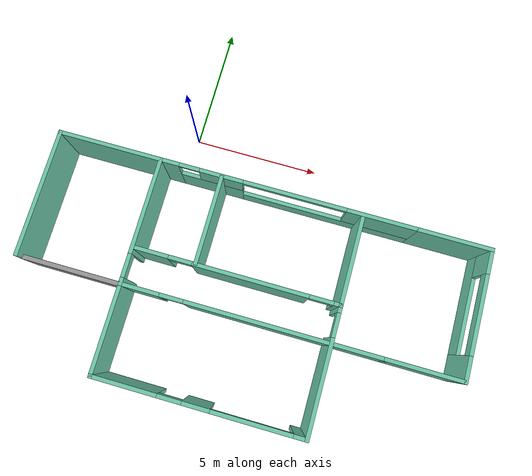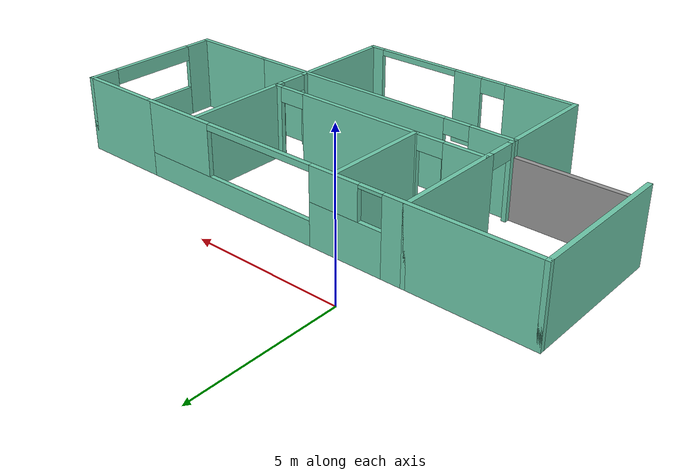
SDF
<?xml version='1.0'?>
<sdf version='1.6'>
  <model name='mybuilding'>
    <pose frame=''>3.59 -5.88011 0 0 -0 0</pose>
    <link name='Door_2'>
      <collision name='Door_2_Collision'>
        <geometry>
          <box>
            <size>4 0.17 2</size>
          </box>
        </geometry>
        <pose frame=''>0 0 1 0 -0 0</pose>
      </collision>
      <visual name='Door_2_Visual'>
        <pose frame=''>0 0 1 0 -0 0</pose>
        <geometry>
          <box>
            <size>4 0.17 2</size>
          </box>
        </geometry>
        <material>
          <script>
            <uri>file://media/materials/scripts/gazebo.material</uri>
            <name>Gazebo/Grey</name>
          </script>
        </material>
      </visual>
      <pose frame=''>-6.34759 -0.757622 0 0 -0 0</pose>
    </link>
    <link name='Wall_0'>
      <collision name='Wall_0_Collision'>
        <geometry>
          <box>
            <size>5 0.15 2.5</size>
          </box>
        </geometry>
        <pose frame=''>0 0 1.25 0 -0 0</pose>
      </collision>
      <visual name='Wall_0_Visual'>
        <pose frame=''>0 0 1.25 0 -0 0</pose>
        <geometry>
          <box>
            <size>5 0.15 2.5</size>
          </box>
        </geometry>
        <material>
          <script>
            <uri>file://media/materials/scripts/gazebo.material</uri>
            <name>Gazebo/Grey</name>
          </script>
          <ambient>0.435294 0.796078 0.67451 1</ambient>
        </material>
        <meta>
          <layer>0</layer>
        </meta>
      </visual>
      <pose frame=''>-8.35 1.67511 0 0 0 -1.5708</pose>
    </link>
    <link name='Wall_10'>
      <pose frame=''>-0.425 -4.09989 0 0 -0 0</pose>
      <visual name='Wall_10_Visual_0'>
        <pose frame=''>-2.74578 0 1.25 0 -0 0</pose>
        <geometry>
          <box>
            <size>2.50844 0.15 2.5</size>
          </box>
        </geometry>
        <material>
          <script>
            <uri>file://media/materials/scripts/gazebo.material</uri>
            <name>Gazebo/Grey</name>
          </script>
          <ambient>0.435294 0.796078 0.67451 1</ambient>
        </material>
        <meta>
          <layer>0</layer>
        </meta>
      </visual>
      <collision name='Wall_10_Collision_0'>
        <geometry>
          <box>
            <size>2.50844 0.15 2.5</size>
          </box>
        </geometry>
        <pose frame=''>-2.74578 0 1.25 0 -0 0</pose>
      </collision>
      <visual name='Wall_10_Visual_1'>
        <pose frame=''>-0.076945 0 1.25 0 -0 0</pose>
        <geometry>
          <box>
            <size>1.02922 0.15 2.5</size>
          </box>
        </geometry>
        <material>
          <script>
            <uri>file://media/materials/scripts/gazebo.material</uri>
            <name>Gazebo/Grey</name>
          </script>
          <ambient>0.435294 0.796078 0.67451 1</ambient>
        </material>
        <meta>
          <layer>0</layer>
        </meta>
      </visual>
      <collision name='Wall_10_Collision_1'>
        <geometry>
          <box>
            <size>1.02922 0.15 2.5</size>
          </box>
        </geometry>
        <pose frame=''>-0.076945 0 1.25 0 -0 0</pose>
      </collision>
      <visual name='Wall_10_Visual_2'>
        <pose frame=''>3.71883 0 1.25 0 -0 0</pose>
        <geometry>
          <box>
            <size>0.562334 0.15 2.5</size>
          </box>
        </geometry>
        <material>
          <script>
            <uri>file://media/materials/scripts/gazebo.material</uri>
            <name>Gazebo/Grey</name>
          </script>
          <ambient>0.435294 0.796078 0.67451 1</ambient>
        </material>
        <meta>
          <layer>0</layer>
        </meta>
      </visual>
      <collision name='Wall_10_Collision_2'>
        <geometry>
          <box>
            <size>0.562334 0.15 2.5</size>
          </box>
        </geometry>
        <pose frame=''>3.71883 0 1.25 0 -0 0</pose>
      </collision>
      <visual name='Wall_10_Visual_3'>
        <pose frame=''>-1.04156 0 2.25 0 -0 0</pose>
        <geometry>
          <box>
            <size>0.9 0.15 0.5</size>
          </box>
        </geometry>
        <material>
          <script>
            <uri>file://media/materials/scripts/gazebo.material</uri>
            <name>Gazebo/Grey</name>
          </script>
          <ambient>0.435294 0.796078 0.67451 1</ambient>
        </material>
        <meta>
          <layer>0</layer>
        </meta>
      </visual>
      <collision name='Wall_10_Collision_3'>
        <geometry>
          <box>
            <size>0.9 0.15 0.5</size>
          </box>
        </geometry>
        <pose frame=''>-1.04156 0 2.25 0 -0 0</pose>
      </collision>
      <visual name='Wall_10_Visual_4'>
        <pose frame=''>1.93767 0 2.4 0 -0 0</pose>
        <geometry>
          <box>
            <size>3 0.15 0.2</size>
          </box>
        </geometry>
        <material>
          <script>
            <uri>file://media/materials/scripts/gazebo.material</uri>
            <name>Gazebo/Grey</name>
          </script>
          <ambient>0.435294 0.796078 0.67451 1</ambient>
        </material>
        <meta>
          <layer>0</layer>
        </meta>
      </visual>
      <collision name='Wall_10_Collision_4'>
        <geometry>
          <box>
            <size>3 0.15 0.2</size>
          </box>
        </geometry>
        <pose frame=''>1.93767 0 2.4 0 -0 0</pose>
      </collision>
    </link>
    <link name='Wall_14'>
      <pose frame=''>-0.411 0.65011 0 0 -0 0</pose>
      <visual name='Wall_14_Visual_0'>
        <pose frame=''>-3.28166 0 1.25 0 -0 0</pose>
        <geometry>
          <box>
            <size>1.43667 0.15 2.5</size>
          </box>
        </geometry>
        <material>
          <script>
            <uri>file://media/materials/scripts/gazebo.material</uri>
            <name>Gazebo/Grey</name>
          </script>
          <ambient>0.435294 0.796078 0.67451 1</ambient>
        </material>
        <meta>
          <layer>0</layer>
        </meta>
      </visual>
      <collision name='Wall_14_Collision_0'>
        <geometry>
          <box>
            <size>1.43667 0.15 2.5</size>
          </box>
        </geometry>
        <pose frame=''>-3.28166 0 1.25 0 -0 0</pose>
      </collision>
      <visual name='Wall_14_Visual_1'>
        <pose frame=''>0.543845 0 1.25 0 -0 0</pose>
        <geometry>
          <box>
            <size>4.41435 0.15 2.5</size>
          </box>
        </geometry>
        <material>
          <script>
            <uri>file://media/materials/scripts/gazebo.material</uri>
            <name>Gazebo/Grey</name>
          </script>
          <ambient>0.435294 0.796078 0.67451 1</ambient>
        </material>
        <meta>
          <layer>0</layer>
        </meta>
      </visual>
      <collision name='Wall_14_Collision_1'>
        <geometry>
          <box>
            <size>4.41435 0.15 2.5</size>
          </box>
        </geometry>
        <pose frame=''>0.543845 0 1.25 0 -0 0</pose>
      </collision>
      <visual name='Wall_14_Visual_2'>
        <pose frame=''>3.8342 0 1.25 0 -0 0</pose>
        <geometry>
          <box>
            <size>0.33159 0.15 2.5</size>
          </box>
        </geometry>
        <material>
          <script>
            <uri>file://media/materials/scripts/gazebo.material</uri>
            <name>Gazebo/Grey</name>
          </script>
          <ambient>0.435294 0.796078 0.67451 1</ambient>
        </material>
        <meta>
          <layer>0</layer>
        </meta>
      </visual>
      <collision name='Wall_14_Collision_2'>
        <geometry>
          <box>
            <size>0.33159 0.15 2.5</size>
          </box>
        </geometry>
        <pose frame=''>3.8342 0 1.25 0 -0 0</pose>
      </collision>
      <visual name='Wall_14_Visual_3'>
        <pose frame=''>-2.11333 0 2.25 0 -0 0</pose>
        <geometry>
          <box>
            <size>0.9 0.15 0.5</size>
          </box>
        </geometry>
        <material>
          <script>
            <uri>file://media/materials/scripts/gazebo.material</uri>
            <name>Gazebo/Grey</name>
          </script>
          <ambient>0.435294 0.796078 0.67451 1</ambient>
        </material>
        <meta>
          <layer>0</layer>
        </meta>
      </visual>
      <collision name='Wall_14_Collision_3'>
        <geometry>
          <box>
            <size>0.9 0.15 0.5</size>
          </box>
        </geometry>
        <pose frame=''>-2.11333 0 2.25 0 -0 0</pose>
      </collision>
      <visual name='Wall_14_Visual_4'>
        <pose frame=''>3.20971 0 2.25 0 -0 0</pose>
        <geometry>
          <box>
            <size>0.917391 0.15 0.5</size>
          </box>
        </geometry>
        <material>
          <script>
            <uri>file://media/materials/scripts/gazebo.material</uri>
            <name>Gazebo/Grey</name>
          </script>
          <ambient>0.435294 0.796078 0.67451 1</ambient>
        </material>
        <meta>
          <layer>0</layer>
        </meta>
      </visual>
      <collision name='Wall_14_Collision_4'>
        <geometry>
          <box>
            <size>0.917391 0.15 0.5</size>
          </box>
        </geometry>
        <pose frame=''>3.20971 0 2.25 0 -0 0</pose>
      </collision>
    </link>
    <link name='Wall_17'>
      <pose frame=''>3.507 -1.72489 0 0 0 -1.57374</pose>
      <visual name='Wall_17_Visual_0'>
        <pose frame=''>-2.27636 0 1.25 0 -0 0</pose>
        <geometry>
          <box>
            <size>0.347298 0.15 2.5</size>
          </box>
        </geometry>
        <material>
          <script>
            <uri>file://media/materials/scripts/gazebo.material</uri>
            <name>Gazebo/Grey</name>
          </script>
          <ambient>0.435294 0.796078 0.67451 1</ambient>
        </material>
        <meta>
          <layer>0</layer>
        </meta>
      </visual>
      <collision name='Wall_17_Collision_0'>
        <geometry>
          <box>
            <size>0.347298 0.15 2.5</size>
          </box>
        </geometry>
        <pose frame=''>-2.27636 0 1.25 0 -0 0</pose>
      </collision>
      <visual name='Wall_17_Visual_1'>
        <pose frame=''>0.623649 0 1.25 0 -0 0</pose>
        <geometry>
          <box>
            <size>3.65272 0.15 2.5</size>
          </box>
        </geometry>
        <material>
          <script>
            <uri>file://media/materials/scripts/gazebo.material</uri>
            <name>Gazebo/Grey</name>
          </script>
          <ambient>0.435294 0.796078 0.67451 1</ambient>
        </material>
        <meta>
          <layer>0</layer>
        </meta>
      </visual>
      <collision name='Wall_17_Collision_1'>
        <geometry>
          <box>
            <size>3.65272 0.15 2.5</size>
          </box>
        </geometry>
        <pose frame=''>0.623649 0 1.25 0 -0 0</pose>
      </collision>
      <visual name='Wall_17_Visual_2'>
        <pose frame=''>-1.65271 0 2.25 0 -0 0</pose>
        <geometry>
          <box>
            <size>0.9 0.15 0.5</size>
          </box>
        </geometry>
        <material>
          <script>
            <uri>file://media/materials/scripts/gazebo.material</uri>
            <name>Gazebo/Grey</name>
          </script>
          <ambient>0.435294 0.796078 0.67451 1</ambient>
        </material>
        <meta>
          <layer>0</layer>
        </meta>
      </visual>
      <collision name='Wall_17_Collision_2'>
        <geometry>
          <box>
            <size>0.9 0.15 0.5</size>
          </box>
        </geometry>
        <pose frame=''>-1.65271 0 2.25 0 -0 0</pose>
      </collision>
    </link>
    <link name='Wall_19'>
      <collision name='Wall_19_Collision'>
        <geometry>
          <box>
            <size>3 0.15 2.5</size>
          </box>
        </geometry>
        <pose frame=''>0 0 1.25 0 -0 0</pose>
      </collision>
      <visual name='Wall_19_Visual'>
        <pose frame=''>0 0 1.25 0 -0 0</pose>
        <geometry>
          <box>
            <size>3 0.15 2.5</size>
          </box>
        </geometry>
        <material>
          <script>
            <uri>file://media/materials/scripts/gazebo.material</uri>
            <name>Gazebo/Grey</name>
          </script>
          <ambient>0.435294 0.796078 0.67451 1</ambient>
        </material>
        <meta>
          <layer>0</layer>
        </meta>
      </visual>
      <pose frame=''>6.925 -0.74989 0 0 -0 0</pose>
    </link>
    <link name='Wall_20'>
      <pose frame=''>8.35 1.67511 0 0 -0 1.5708</pose>
      <visual name='Wall_20_Visual_0'>
        <pose frame=''>-2.00018 0 1.25 0 -0 0</pose>
        <geometry>
          <box>
            <size>0.999645 0.15 2.5</size>
          </box>
        </geometry>
        <material>
          <script>
            <uri>file://media/materials/scripts/gazebo.material</uri>
            <name>Gazebo/Grey</name>
          </script>
          <ambient>0.435294 0.796078 0.67451 1</ambient>
        </material>
        <meta>
          <layer>0</layer>
        </meta>
      </visual>
      <collision name='Wall_20_Collision_0'>
        <geometry>
          <box>
            <size>0.999645 0.15 2.5</size>
          </box>
        </geometry>
        <pose frame=''>-2.00018 0 1.25 0 -0 0</pose>
      </collision>
      <visual name='Wall_20_Visual_1'>
        <pose frame=''>0.499822 0 0.5 0 -0 0</pose>
        <geometry>
          <box>
            <size>4.00035 0.15 1</size>
          </box>
        </geometry>
        <material>
          <script>
            <uri>file://media/materials/scripts/gazebo.material</uri>
            <name>Gazebo/Grey</name>
          </script>
          <ambient>0.435294 0.796078 0.67451 1</ambient>
        </material>
        <meta>
          <layer>0</layer>
        </meta>
      </visual>
      <collision name='Wall_20_Collision_1'>
        <geometry>
          <box>
            <size>4.00035 0.15 1</size>
          </box>
        </geometry>
        <pose frame=''>0.499822 0 0.5 0 -0 0</pose>
      </collision>
      <visual name='Wall_20_Visual_2'>
        <pose frame=''>1.99982 0 1.75 0 -0 0</pose>
        <geometry>
          <box>
            <size>1.00036 0.15 1.5</size>
          </box>
        </geometry>
        <material>
          <script>
            <uri>file://media/materials/scripts/gazebo.material</uri>
            <name>Gazebo/Grey</name>
          </script>
          <ambient>0.435294 0.796078 0.67451 1</ambient>
        </material>
        <meta>
          <layer>0</layer>
        </meta>
      </visual>
      <collision name='Wall_20_Collision_2'>
        <geometry>
          <box>
            <size>1.00036 0.15 1.5</size>
          </box>
        </geometry>
        <pose frame=''>1.99982 0 1.75 0 -0 0</pose>
      </collision>
      <visual name='Wall_20_Visual_3'>
        <pose frame=''>-0.000355 0 2.25 0 -0 0</pose>
        <geometry>
          <box>
            <size>3 0.15 0.5</size>
          </box>
        </geometry>
        <material>
          <script>
            <uri>file://media/materials/scripts/gazebo.material</uri>
            <name>Gazebo/Grey</name>
          </script>
          <ambient>0.435294 0.796078 0.67451 1</ambient>
        </material>
        <meta>
          <layer>0</layer>
        </meta>
      </visual>
      <collision name='Wall_20_Collision_3'>
        <geometry>
          <box>
            <size>3 0.15 0.5</size>
          </box>
        </geometry>
        <pose frame=''>-0.000355 0 2.25 0 -0 0</pose>
      </collision>
    </link>
    <link name='Wall_21'>
      <collision name='Wall_21_Collision'>
        <geometry>
          <box>
            <size>3 0.15 2.5</size>
          </box>
        </geometry>
        <pose frame=''>0 0 1.25 0 -0 0</pose>
      </collision>
      <visual name='Wall_21_Visual'>
        <pose frame=''>0 0 1.25 0 -0 0</pose>
        <geometry>
          <box>
            <size>3 0.15 2.5</size>
          </box>
        </geometry>
        <material>
          <script>
            <uri>file://media/materials/scripts/gazebo.material</uri>
            <name>Gazebo/Grey</name>
          </script>
          <ambient>0.435294 0.796078 0.67451 1</ambient>
        </material>
        <meta>
          <layer>0</layer>
        </meta>
      </visual>
      <pose frame=''>6.925 4.10011 0 0 -0 3.14159</pose>
    </link>
    <link name='Wall_23'>
      <collision name='Wall_23_Collision'>
        <geometry>
          <box>
            <size>3.5 0.15 2.5</size>
          </box>
        </geometry>
        <pose frame=''>0 0 1.25 0 -0 0</pose>
      </collision>
      <visual name='Wall_23_Visual'>
        <pose frame=''>0 0 1.25 0 -0 0</pose>
        <geometry>
          <box>
            <size>3.5 0.15 2.5</size>
          </box>
        </geometry>
        <material>
          <script>
            <uri>file://media/materials/scripts/gazebo.material</uri>
            <name>Gazebo/Grey</name>
          </script>
          <ambient>0.435294 0.796078 0.67451 1</ambient>
        </material>
        <meta>
          <layer>0</layer>
        </meta>
      </visual>
      <pose frame=''>3.514 2.32511 0 0 -0 1.5708</pose>
    </link>
    <link name='Wall_27'>
      <collision name='Wall_27_Collision'>
        <geometry>
          <box>
            <size>3.5 0.15 2.5</size>
          </box>
        </geometry>
        <pose frame=''>0 0 1.25 0 -0 0</pose>
      </collision>
      <visual name='Wall_27_Visual'>
        <pose frame=''>0 0 1.25 0 -0 0</pose>
        <geometry>
          <box>
            <size>3.5 0.15 2.5</size>
          </box>
        </geometry>
        <material>
          <script>
            <uri>file://media/materials/scripts/gazebo.material</uri>
            <name>Gazebo/Grey</name>
          </script>
          <ambient>0.435294 0.796078 0.67451 1</ambient>
        </material>
        <meta>
          <layer>0</layer>
        </meta>
      </visual>
      <pose frame=''>-1.94606 2.37639 0 0 -0 1.5708</pose>
    </link>
    <link name='Wall_3'>
      <pose frame=''>-1.425 4.10011 0 0 -0 0</pose>
      <visual name='Wall_3_Visual_0'>
        <pose frame=''>-4.59858 0 1.25 0 -0 0</pose>
        <geometry>
          <box>
            <size>4.80283 0.15 2.5</size>
          </box>
        </geometry>
        <material>
          <script>
            <uri>file://media/materials/scripts/gazebo.material</uri>
            <name>Gazebo/Grey</name>
          </script>
          <ambient>0.435294 0.796078 0.67451 1</ambient>
        </material>
        <meta>
          <layer>0</layer>
        </meta>
      </visual>
      <collision name='Wall_3_Collision_0'>
        <geometry>
          <box>
            <size>4.80283 0.15 2.5</size>
          </box>
        </geometry>
        <pose frame=''>-4.59858 0 1.25 0 -0 0</pose>
      </collision>
      <visual name='Wall_3_Visual_1'>
        <pose frame=''>-0.948954 0 0.7 0 -0 0</pose>
        <geometry>
          <box>
            <size>2.49643 0.15 1.4</size>
          </box>
        </geometry>
        <material>
          <script>
            <uri>file://media/materials/scripts/gazebo.material</uri>
            <name>Gazebo/Grey</name>
          </script>
          <ambient>0.435294 0.796078 0.67451 1</ambient>
        </material>
        <meta>
          <layer>0</layer>
        </meta>
      </visual>
      <collision name='Wall_3_Collision_1'>
        <geometry>
          <box>
            <size>2.49643 0.15 1.4</size>
          </box>
        </geometry>
        <pose frame=''>-0.948954 0 0.7 0 -0 0</pose>
      </collision>
      <visual name='Wall_3_Visual_2'>
        <pose frame=''>3.64963 0 0.4 0 -0 0</pose>
        <geometry>
          <box>
            <size>6.70074 0.15 0.8</size>
          </box>
        </geometry>
        <material>
          <script>
            <uri>file://media/materials/scripts/gazebo.material</uri>
            <name>Gazebo/Grey</name>
          </script>
          <ambient>0.435294 0.796078 0.67451 1</ambient>
        </material>
        <meta>
          <layer>0</layer>
        </meta>
      </visual>
      <collision name='Wall_3_Collision_2'>
        <geometry>
          <box>
            <size>6.70074 0.15 0.8</size>
          </box>
        </geometry>
        <pose frame=''>3.64963 0 0.4 0 -0 0</pose>
      </collision>
      <visual name='Wall_3_Visual_3'>
        <pose frame=''>5.64963 0 1.65 0 -0 0</pose>
        <geometry>
          <box>
            <size>2.70074 0.15 1.7</size>
          </box>
        </geometry>
        <material>
          <script>
            <uri>file://media/materials/scripts/gazebo.material</uri>
            <name>Gazebo/Grey</name>
          </script>
          <ambient>0.435294 0.796078 0.67451 1</ambient>
        </material>
        <meta>
          <layer>0</layer>
        </meta>
      </visual>
      <collision name='Wall_3_Collision_3'>
        <geometry>
          <box>
            <size>2.70074 0.15 1.7</size>
          </box>
        </geometry>
        <pose frame=''>5.64963 0 1.65 0 -0 0</pose>
      </collision>
      <visual name='Wall_3_Visual_4'>
        <pose frame=''>-0.548954 0 1.95 0 -0 0</pose>
        <geometry>
          <box>
            <size>1.69643 0.15 1.1</size>
          </box>
        </geometry>
        <material>
          <script>
            <uri>file://media/materials/scripts/gazebo.material</uri>
            <name>Gazebo/Grey</name>
          </script>
          <ambient>0.435294 0.796078 0.67451 1</ambient>
        </material>
        <meta>
          <layer>0</layer>
        </meta>
      </visual>
      <collision name='Wall_3_Collision_4'>
        <geometry>
          <box>
            <size>1.69643 0.15 1.1</size>
          </box>
        </geometry>
        <pose frame=''>-0.548954 0 1.95 0 -0 0</pose>
      </collision>
      <visual name='Wall_3_Visual_5'>
        <pose frame=''>2.29926 0 2.4 0 -0 0</pose>
        <geometry>
          <box>
            <size>4 0.15 0.2</size>
          </box>
        </geometry>
        <material>
          <script>
            <uri>file://media/materials/scripts/gazebo.material</uri>
            <name>Gazebo/Grey</name>
          </script>
          <ambient>0.435294 0.796078 0.67451 1</ambient>
        </material>
        <meta>
          <layer>0</layer>
        </meta>
      </visual>
      <collision name='Wall_3_Collision_5'>
        <geometry>
          <box>
            <size>4 0.15 0.2</size>
          </box>
        </geometry>
        <pose frame=''>2.29926 0 2.4 0 -0 0</pose>
      </collision>
      <visual name='Wall_3_Visual_6'>
        <pose frame=''>-1.79717 0 2.45 0 -0 0</pose>
        <geometry>
          <box>
            <size>0.8 0.15 0.1</size>
          </box>
        </geometry>
        <material>
          <script>
            <uri>file://media/materials/scripts/gazebo.material</uri>
            <name>Gazebo/Grey</name>
          </script>
          <ambient>0.435294 0.796078 0.67451 1</ambient>
        </material>
        <meta>
          <layer>0</layer>
        </meta>
      </visual>
      <collision name='Wall_3_Collision_6'>
        <geometry>
          <box>
            <size>0.8 0.15 0.1</size>
          </box>
        </geometry>
        <pose frame=''>-1.79717 0 2.45 0 -0 0</pose>
      </collision>
    </link>
    <link name='Wall_5'>
      <pose frame=''>0.575 -0.74989 0 0 -0 3.14159</pose>
      <visual name='Wall_5_Visual_0'>
        <pose frame=''>-1.2216 0 1.25 0 -0 0</pose>
        <geometry>
          <box>
            <size>7.55681 0.15 2.5</size>
          </box>
        </geometry>
        <material>
          <script>
            <uri>file://media/materials/scripts/gazebo.material</uri>
            <name>Gazebo/Grey</name>
          </script>
          <ambient>0.435294 0.796078 0.67451 1</ambient>
        </material>
        <meta>
          <layer>0</layer>
        </meta>
      </visual>
      <collision name='Wall_5_Collision_0'>
        <geometry>
          <box>
            <size>7.55681 0.15 2.5</size>
          </box>
        </geometry>
        <pose frame=''>-1.2216 0 1.25 0 -0 0</pose>
      </collision>
      <visual name='Wall_5_Visual_1'>
        <pose frame=''>4.2284 0 1.25 0 -0 0</pose>
        <geometry>
          <box>
            <size>1.54319 0.15 2.5</size>
          </box>
        </geometry>
        <material>
          <script>
            <uri>file://media/materials/scripts/gazebo.material</uri>
            <name>Gazebo/Grey</name>
          </script>
          <ambient>0.435294 0.796078 0.67451 1</ambient>
        </material>
        <meta>
          <layer>0</layer>
        </meta>
      </visual>
      <collision name='Wall_5_Collision_1'>
        <geometry>
          <box>
            <size>1.54319 0.15 2.5</size>
          </box>
        </geometry>
        <pose frame=''>4.2284 0 1.25 0 -0 0</pose>
      </collision>
      <visual name='Wall_5_Visual_2'>
        <pose frame=''>3.00681 0 2.25 0 -0 0</pose>
        <geometry>
          <box>
            <size>0.9 0.15 0.5</size>
          </box>
        </geometry>
        <material>
          <script>
            <uri>file://media/materials/scripts/gazebo.material</uri>
            <name>Gazebo/Grey</name>
          </script>
          <ambient>0.435294 0.796078 0.67451 1</ambient>
        </material>
        <meta>
          <layer>0</layer>
        </meta>
      </visual>
      <collision name='Wall_5_Collision_2'>
        <geometry>
          <box>
            <size>0.9 0.15 0.5</size>
          </box>
        </geometry>
        <pose frame=''>3.00681 0 2.25 0 -0 0</pose>
      </collision>
    </link>
    <link name='Wall_6'>
      <pose frame=''>-4.35 1.67511 0 0 -0 1.5708</pose>
      <visual name='Wall_6_Visual_0'>
        <pose frame=''>-2.34352 0 1.25 0 -0 0</pose>
        <geometry>
          <box>
            <size>0.312969 0.15 2.5</size>
          </box>
        </geometry>
        <material>
          <script>
            <uri>file://media/materials/scripts/gazebo.material</uri>
            <name>Gazebo/Grey</name>
          </script>
          <ambient>0.435294 0.796078 0.67451 1</ambient>
        </material>
        <meta>
          <layer>0</layer>
        </meta>
      </visual>
      <collision name='Wall_6_Collision_0'>
        <geometry>
          <box>
            <size>0.312969 0.15 2.5</size>
          </box>
        </geometry>
        <pose frame=''>-2.34352 0 1.25 0 -0 0</pose>
      </collision>
      <visual name='Wall_6_Visual_1'>
        <pose frame=''>0.606485 0 1.25 0 -0 0</pose>
        <geometry>
          <box>
            <size>3.78703 0.15 2.5</size>
          </box>
        </geometry>
        <material>
          <script>
            <uri>file://media/materials/scripts/gazebo.material</uri>
            <name>Gazebo/Grey</name>
          </script>
          <ambient>0.435294 0.796078 0.67451 1</ambient>
        </material>
        <meta>
          <layer>0</layer>
        </meta>
      </visual>
      <collision name='Wall_6_Collision_1'>
        <geometry>
          <box>
            <size>3.78703 0.15 2.5</size>
          </box>
        </geometry>
        <pose frame=''>0.606485 0 1.25 0 -0 0</pose>
      </collision>
      <visual name='Wall_6_Visual_2'>
        <pose frame=''>-1.73703 0 2.25 0 -0 0</pose>
        <geometry>
          <box>
            <size>0.9 0.15 0.5</size>
          </box>
        </geometry>
        <material>
          <script>
            <uri>file://media/materials/scripts/gazebo.material</uri>
            <name>Gazebo/Grey</name>
          </script>
          <ambient>0.435294 0.796078 0.67451 1</ambient>
        </material>
        <meta>
          <layer>0</layer>
        </meta>
      </visual>
      <collision name='Wall_6_Collision_2'>
        <geometry>
          <box>
            <size>0.9 0.15 0.5</size>
          </box>
        </geometry>
        <pose frame=''>-1.73703 0 2.25 0 -0 0</pose>
      </collision>
    </link>
    <link name='Wall_9'>
      <collision name='Wall_9_Collision'>
        <geometry>
          <box>
            <size>3.5 0.15 2.5</size>
          </box>
        </geometry>
        <pose frame=''>0 0 1.25 0 -0 0</pose>
      </collision>
      <visual name='Wall_9_Visual'>
        <pose frame=''>0 0 1.25 0 -0 0</pose>
        <geometry>
          <box>
            <size>3.5 0.15 2.5</size>
          </box>
        </geometry>
        <material>
          <script>
            <uri>file://media/materials/scripts/gazebo.material</uri>
            <name>Gazebo/Grey</name>
          </script>
          <ambient>0.435294 0.796078 0.67451 1</ambient>
        </material>
        <meta>
          <layer>0</layer>
        </meta>
      </visual>
      <pose frame=''>-4.35 -2.42489 0 0 0 -1.5708</pose>
    </link>
    <static>1</static>
  </model>
</sdf>
